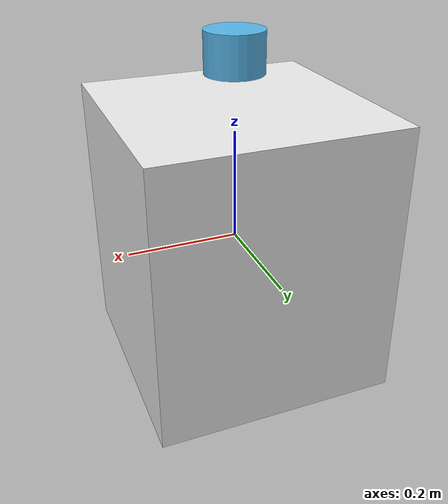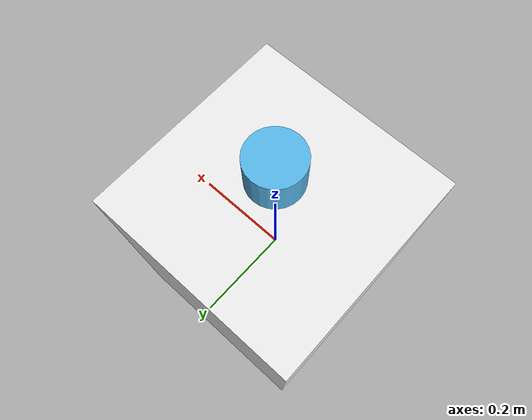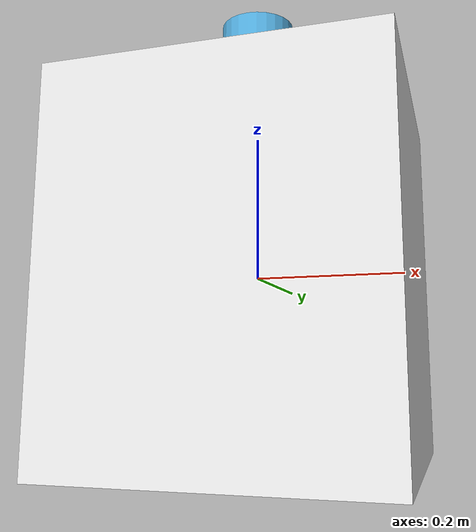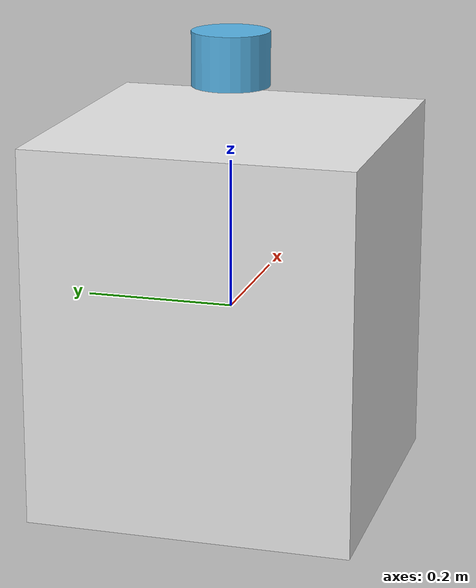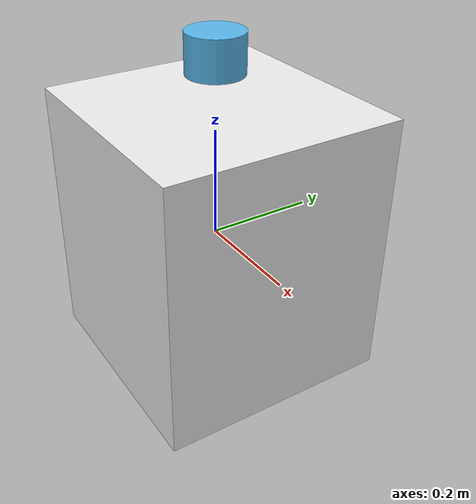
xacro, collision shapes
<robot xmlns:xacro="http://www.ros.org/wiki/xacro" name="example">

  <link name="sensor" />

  <xacro:include filename="$(find velodyne_description)/urdf/VLP-16.urdf.xacro"/>
  <VLP-16 parent="sensor" name="velodyne" topic="/velodyne_points" hz="5" samples="350">
    <origin xyz="0 0 0" rpy="0 0 0" />
  </VLP-16>

  <link name="chassis">
    <!-- pose and inertial -->
    <pose>0 0 0.1 0 0 0</pose>

    <inertial>
      <mass value="5"/>
      <origin rpy="0 0 0" xyz="0 0 0"/>
      <inertia ixx="0.0395416666667" ixy="0" ixz="0" iyy="0.106208333333" iyz="0" izz="0.106208333333"/>
    </inertial>

    <collision name="collision_chassis">
      <geometry>
        <box size="0.4318 0.4318 0.5"/>
      </geometry>
    </collision>

    <visual>
      <origin rpy="0 0 0" xyz="0 0 0"/>
      <geometry>
         <box size="0.4318 0.4318 0.5"/>
      </geometry>
      <material name="white"/>
    </visual>
</link>

<joint name="joint_sensor_laser" type="fixed">
    <origin xyz="0 0 0.3" rpy="0 0 0"/>
    <parent link="chassis"/>
    <child link="sensor"/>
  </joint>

</robot>

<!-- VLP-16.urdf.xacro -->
<robot xmlns:xacro="http://www.ros.org/wiki/xacro" name="VLP-16">
  <xacro:property name="M_PI" value="3.1415926535897931" />
  <xacro:macro name="VLP-16" params="*origin is_sim:=true parent:=base_link name:=velodyne tf_prefix:='' topic:=/velodyne_points organize_cloud:=false hz:=10 lasers:=16 samples:=1875 collision_range:=0.3 min_range:=0.0 max_range:=100.0 noise:=0.008 min_angle:=-${M_PI} max_angle:=${M_PI} gpu:=false">

    <joint name="${name}_base_mount_joint" type="fixed">
      <xacro:insert_block name="origin" />
      <parent link="${parent}"/>
      <child link="${name}_base_link"/>
    </joint>

    <link name="${name}_base_link">
      <inertial>
        <mass value="0.83"/>
        <origin xyz="0 0 0.03585"/>
        <inertia ixx="${(0.83 * (3.0*0.0516*0.0516 + 0.0717*0.0717)) / 12.0}" ixy="0" ixz="0"
          iyy="${(0.83 * (3.0*0.0516*0.0516 + 0.0717*0.0717)) / 12.0}" iyz="0"
          izz="${0.5 * 0.83 * (0.0516*0.0516)}"/>
      </inertial>
      <visual>
        <geometry>
          <mesh filename="package://velodyne_description/meshes/VLP16_base_1.dae" />
        </geometry>
      </visual>
      <visual>
        <geometry>
          <mesh filename="package://velodyne_description/meshes/VLP16_base_2.dae" />
        </geometry>
      </visual>
      <collision>
        <origin rpy="0 0 0" xyz="0 0 0.03585"/>
        <geometry>
          <cylinder radius="0.0516" length="0.0717"/>
        </geometry>
      </collision>
    </link>

    <joint name="${name}_base_scan_joint" type="fixed" >
      <origin xyz="0 0 0.0377" rpy="0 0 0" />
      <parent link="${name}_base_link" />
      <child link="${name}"/>
    </joint>

    <link name="${name}">
      <inertial>
        <mass value="0.01"/>
        <origin xyz="0 0 0"/>
        <inertia ixx="1e-7" ixy="0" ixz="0" iyy="1e-7" iyz="0" izz="1e-7"/>
      </inertial>
      <visual>
        <origin xyz="0 0 -0.0377" />
        <geometry>
          <mesh filename="package://velodyne_description/meshes/VLP16_scan.dae" />
        </geometry>
      </visual>
      <collision>
        <geometry>
          <sphere radius="0"/>
        </geometry>
      </collision>
    </link>

    <!-- Gazebo requires the velodyne_gazebo_plugins package -->
    <xacro:if value="${is_sim}">
        <gazebo reference="${name}">
            <xacro:if value="${gpu}">
                <sensor type="gpu_ray" name="${name}-VLP16">
                <pose>0 0 0 0 0 0</pose>
                <visualize>false</visualize>
                <update_rate>${hz}</update_rate>
                <ray>
                    <scan>
                    <horizontal>
                        <samples>${samples}</samples>
                        <resolution>1</resolution>
                        <min_angle>${min_angle}</min_angle>
                        <max_angle>${max_angle}</max_angle>
                    </horizontal>
                    <vertical>
                        <samples>${lasers}</samples>
                        <resolution>1</resolution>
                        <min_angle>-${15.0*M_PI/180.0}</min_angle>
                        <max_angle> ${15.0*M_PI/180.0}</max_angle>
                    </vertical>
                    </scan>
                    <range>
                    <min>${collision_range}</min>
                    <max>${max_range+1}</max>
                    <resolution>0.001</resolution>
                    </range>
                    <noise>
                    <type>gaussian</type>
                    <mean>0.0</mean>
                    <stddev>0.0</stddev>
                    </noise>
                </ray>
                <plugin name="gazebo_ros_laser_controller" filename="libgazebo_ros_velodyne_laser.so">
                    <ros>
                    <namespace>/${name}</namespace>
                    <remapping>~/out:=${topic}</remapping>
                    </ros>
                    <tf_prefix>${tf_prefix}</tf_prefix>
                    <frame_name>${name}</frame_name>
                    <organize_cloud>${organize_cloud}</organize_cloud>
                    <min_range>${min_range}</min_range>
                    <max_range>${max_range}</max_range>
                    <gaussian_noise>${noise}</gaussian_noise>
                </plugin>
                </sensor>
            </xacro:if>
            <xacro:unless value="${gpu}">
                <sensor type="ray" name="${name}-VLP16">
                <pose>0 0 0 0 0 0</pose>
                <visualize>false</visualize>
                <update_rate>${hz}</update_rate>
                <ray>
                    <scan>
                    <horizontal>
                        <samples>${samples}</samples>
                        <resolution>1</resolution>
                        <min_angle>${min_angle}</min_angle>
                        <max_angle>${max_angle}</max_angle>
                    </horizontal>
                    <vertical>
                        <samples>${lasers}</samples>
                        <resolution>1</resolution>
                        <min_angle>-${15.0*M_PI/180.0}</min_angle>
                        <max_angle> ${15.0*M_PI/180.0}</max_angle>
                    </vertical>
                    </scan>
                    <range>
                    <min>${collision_range}</min>
                    <max>${max_range+1}</max>
                    <resolution>0.001</resolution>
                    </range>
                    <noise>
                    <type>gaussian</type>
                    <mean>0.0</mean>
                    <stddev>0.0</stddev>
                    </noise>
                </ray>
                <plugin name="gazebo_ros_laser_controller" filename="libgazebo_ros_velodyne_laser.so">
                    <ros>
                    <namespace>/${name}</namespace>
                    <remapping>~/out:=${topic}</remapping>
                    </ros>
                    <tf_prefix>${tf_prefix}</tf_prefix>
                    <frame_name>${name}</frame_name>
                    <organize_cloud>${organize_cloud}</organize_cloud>
                    <min_range>${min_range}</min_range>
                    <max_range>${max_range}</max_range>
                    <gaussian_noise>${noise}</gaussian_noise>
                </plugin>
                </sensor>
            </xacro:unless>
        </gazebo>
    </xacro:if>

  </xacro:macro>
</robot>
